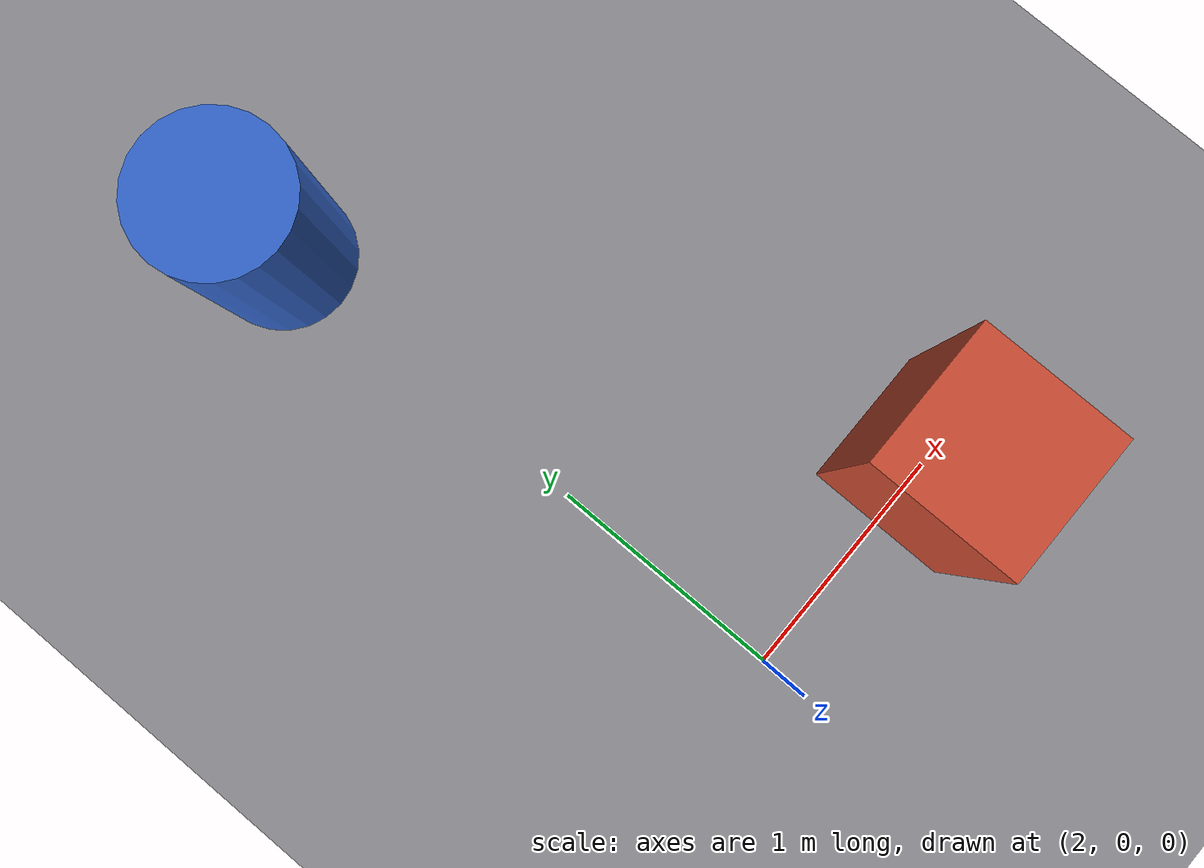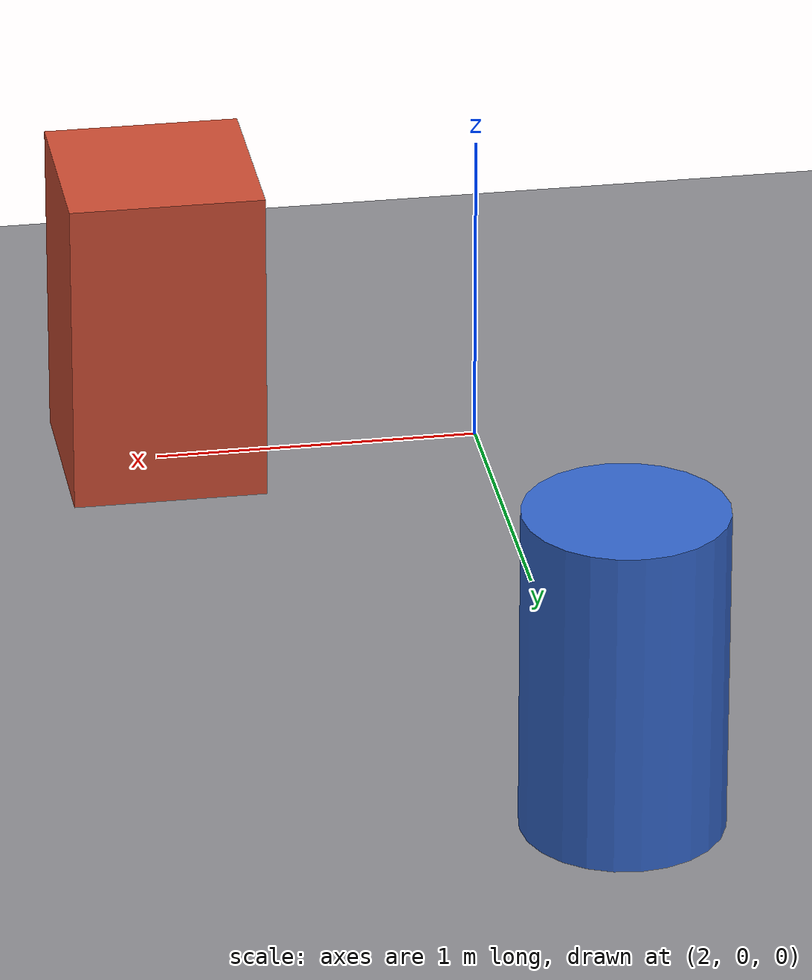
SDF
<?xml version="1.0"?>
<sdf version="1.10">
  <world name="fleet_world">
    <physics name="fleet_physics" type="ode">
      <max_step_size>0.004</max_step_size>
      <real_time_factor>1.0</real_time_factor>
    </physics>

    <plugin filename="gz-sim-physics-system" name="gz::sim::systems::Physics"/>
    <plugin filename="gz-sim-user-commands-system" name="gz::sim::systems::UserCommands"/>
    <plugin filename="gz-sim-scene-broadcaster-system" name="gz::sim::systems::SceneBroadcaster"/>
    <plugin filename="gz-sim-sensors-system" name="gz::sim::systems::Sensors">
      <render_engine>ogre2</render_engine>
    </plugin>
    <plugin filename="gz-sim-imu-system" name="gz::sim::systems::Imu"/>

    <gravity>0 0 -9.8</gravity>

    <light type="directional" name="sun">
      <cast_shadows>true</cast_shadows>
      <pose>0 0 10 0 0 0</pose>
      <diffuse>0.9 0.9 0.9 1</diffuse>
      <specular>0.2 0.2 0.2 1</specular>
      <direction>-0.5 0.1 -0.9</direction>
    </light>

    <model name="ground_plane">
      <static>true</static>
      <link name="link">
        <collision name="collision">
          <geometry><plane><normal>0 0 1</normal><size>100 100</size></plane></geometry>
        </collision>
        <visual name="visual">
          <geometry><plane><normal>0 0 1</normal><size>100 100</size></plane></geometry>
          <material>
            <ambient>0.55 0.55 0.57 1</ambient>
            <diffuse>0.55 0.55 0.57 1</diffuse>
            <specular>0.1 0.1 0.1 1</specular>
          </material>
        </visual>
      </link>
    </model>

    <!-- A few obstacles so the lidar and cameras have something to see -->
    <model name="obstacle_box">
      <static>true</static>
      <pose>3 0 0.5 0 0 0</pose>
      <link name="link">
        <collision name="collision"><geometry><box><size>0.6 0.6 1.0</size></box></geometry></collision>
        <visual name="visual">
          <geometry><box><size>0.6 0.6 1.0</size></box></geometry>
          <material><ambient>0.8 0.3 0.2 1</ambient><diffuse>0.8 0.3 0.2 1</diffuse></material>
        </visual>
      </link>
    </model>
    <model name="obstacle_cylinder">
      <static>true</static>
      <pose>2 2.5 0.5 0 0 0</pose>
      <link name="link">
        <collision name="collision"><geometry><cylinder><radius>0.3</radius><length>1.0</length></cylinder></geometry></collision>
        <visual name="visual">
          <geometry><cylinder><radius>0.3</radius><length>1.0</length></cylinder></geometry>
          <material><ambient>0.2 0.4 0.8 1</ambient><diffuse>0.2 0.4 0.8 1</diffuse></material>
        </visual>
      </link>
    </model>
  </world>
</sdf>
